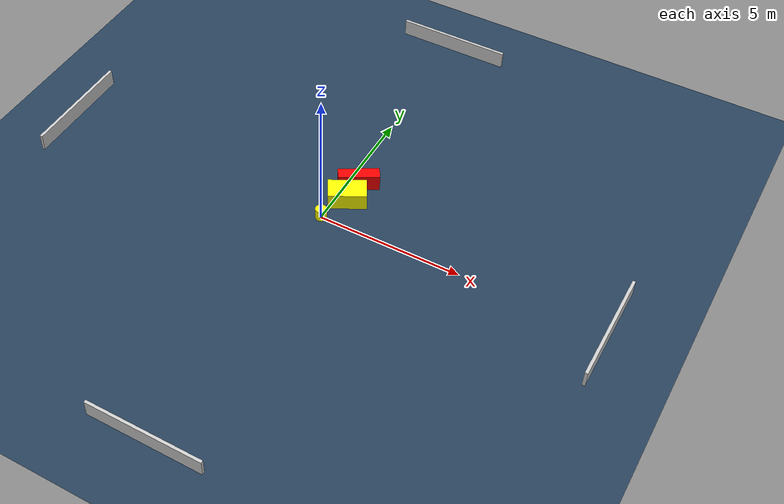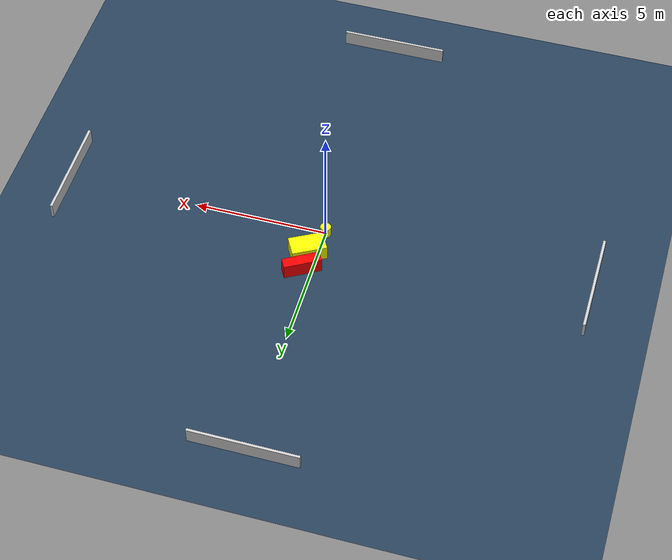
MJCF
<?xml version="1.0" ?>
<mujoco model="generated_environment">
  <option timestep="0.01" integrator="RK4" cone="elliptic"/>
  <default>
    <geom density="1"/>
  </default>
  <asset>
    <texture builtin="gradient" height="3072" name="skybox" rgb1="0.3 0.5 0.7" rgb2="0 0 0" type="skybox" width="512"/>
    <texture builtin="checker" height="300" name="groundplane" rgb1="0.2 0.3 0.4" rgb2="0.1 0.2 0.3" type="2d" width="300"/>
    <material name="groundplane" reflectance="0.2" texrepeat="5 5" texture="groundplane"/>
  </asset>
  <worldbody>
    <light dir="0 0 -1" directional="true" pos="0 0 1.5"/>
    <geom condim="3" friction="0.5 0.005 0.001" material="groundplane" name="floor" pos="0 0 0" size="0 0 0.05" type="plane"/>
    <body name="walls">
      <geom name="wall_1" condim="4" pos="-10.0 0.0 0.3" rgba="0.800000011920929 0.800000011920929 0.800000011920929 1.0" size="0.05 2.0 0.3" type="box"/>
      <geom name="wall_2" condim="4" pos="10.0 0.0 0.3" rgba="0.800000011920929 0.800000011920929 0.800000011920929 1.0" size="0.05 2.0 0.3" type="box"/>
      <geom name="wall_3" condim="4" pos="0.0 -10.0 0.3" rgba="0.800000011920929 0.800000011920929 0.800000011920929 1.0" size="2.0 0.05 0.3" type="box"/>
      <geom name="wall_4" condim="4" pos="0.0 10.0 0.3" rgba="0.800000011920929 0.800000011920929 0.800000011920929 1.0" size="2.0 0.05 0.3" type="box"/>
    </body>
    <body name="robot">
      <joint name="joint_x" type="slide" pos="0 0 0" axis="1 0 0"/>
      <joint name="joint_y" type="slide" pos="0 0 0" axis="0 1 0"/>
      <geom name="robot" type="cylinder" pos="0.0 0.0 0.2" size="0.2 0.2 0.0" mass="5.0" friction="1.0 0.005 0.0001" condim="4" rgba="1.0 1.0 0.0 1.0"/>
    </body>
    <body name="obstacle_1_movable">
      <geom name="obstacle_1_movable" condim="4" pos="0.37507734223747163 1.0883806818360602 0.3" euler="0 0 28.766985485174228" friction="0.0 0.005 0.001" rgba="1.0 1.0 0.0 1.0" size="0.6521986388439449 0.3832411963679697 0.3" type="box" mass="0.1"/>
      <joint type="free"/>
    </body>
    <body name="obstacle_2_static">
      <geom name="obstacle_2_static" condim="4" pos="0.362596441992287 1.8994416244614454 0.3" euler="0 0 120.31550437419182" friction="0.0 0.005 0.001" rgba="1.0 0.0 0.0 1.0" size="0.2046229888603388 0.7027041381069621 0.3" type="box"/>
    </body>
  </worldbody>
  <actuator>
    <motor name="actuator_x" joint="joint_x" gear="1" ctrlrange="-1 1"/>
    <motor name="actuator_y" joint="joint_y" gear="1" ctrlrange="-1 1"/>
  </actuator>
</mujoco>
